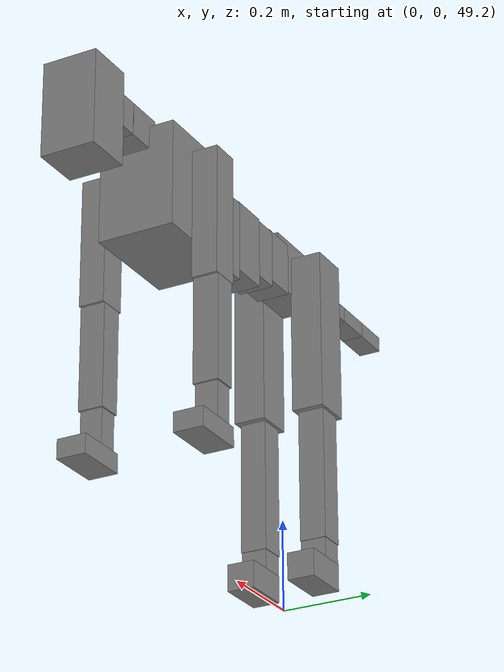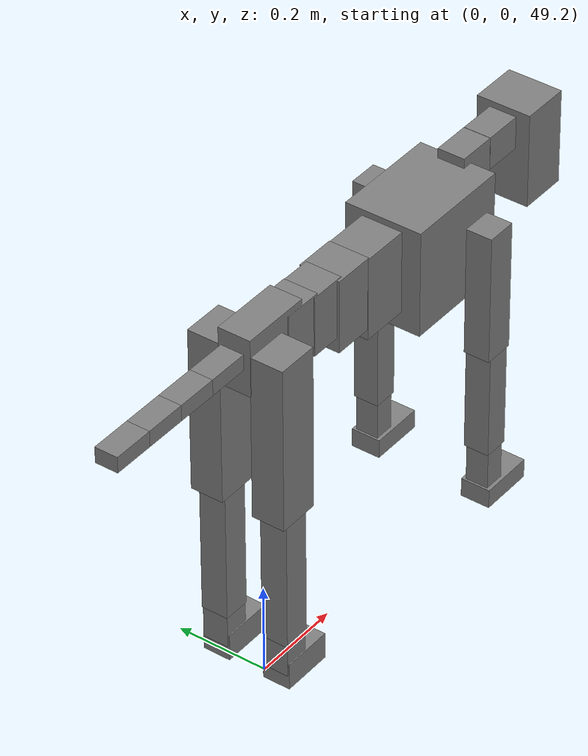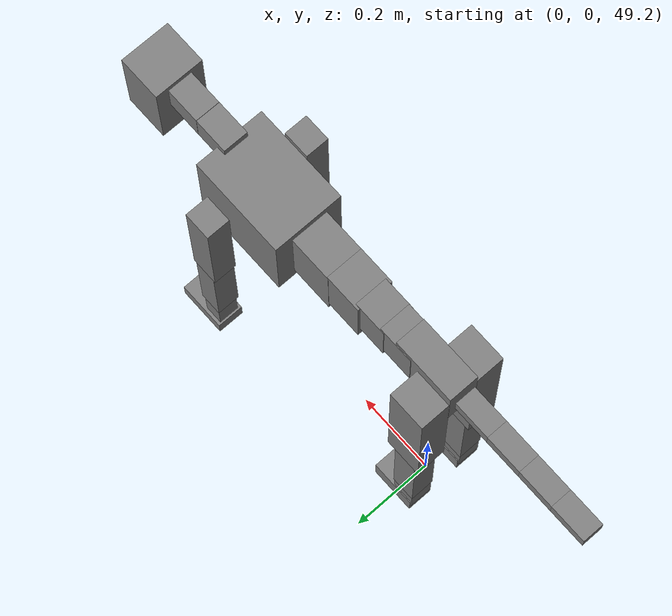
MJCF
<mujoco model="dog">

    <default>
        <joint armature="0.02" stiffness="1" damping="0.2" limited="true"/>
        <geom condim="3" friction="1 0.05 0.05" margin="0.01"/>
        <motor ctrllimited="true" ctrlrange="-1.0 1.0" forcelimited="true" gear="50"/>
    </default>

    <compiler inertiafromgeom="true" angle="radian"/>

    <option timestep="0.016" iterations="50" tolerance="1e-10" solver="Newton" jacobian="dense" cone="pyramidal"/>

    <size nconmax="20000" njmax="60000" nstack="5000000"/>
    <visual>
        <map force="0.1" zfar="30"/>
        <rgba haze="0.15 0.25 0.35 1"/>
        <quality shadowsize="2048"/>
        <global offwidth="800" offheight="800"/>
    </visual>

    <asset>
        <texture type="skybox" builtin="gradient" rgb1="0.3 0.5 0.7" rgb2="0 0 0" width="512" height="512"/>
        <texture name="texplane" type="2d" builtin="checker" rgb1=".2 .3 .4" rgb2=".1 0.15 0.2" width="512" height="512"
                 mark="cross" markrgb=".8 .8 .8"/>
        <texture name="texgeom" type="cube" builtin="flat" mark="cross" width="127" height="1278" rgb1="0.8 0.6 0.4"
                 rgb2="0.8 0.6 0.4" markrgb="1 1 1" random="0.01"/>

        <material name="matplane" reflectance="0.3" texture="texplane" texrepeat="1 1" texuniform="true"/>
        <material name="matgeom" texture="texgeom" texuniform="true" rgba="0.8 0.6 .4 1"/>
    </asset>

    <worldbody>
        <geom name="floor" pos="0 0 0" size="0 0 .25" type="plane" material="matplane" condim="3"/>

        <light directional="false" diffuse=".2 .2 .2" specular="0 0 0" pos="0 0 5" dir="0 0 -1" castshadow="false"/>
        <light mode="targetbodycom" target="torso" directional="false" diffuse=".8 .8 .8" specular="0.3 0.3 0.3"
               pos="0 0 4.0" dir="0 0 -1"/>

        <body name="root" pos="0 0 50">
            <freejoint name="root_1"/>
            <geom type="box" pos="0 0 -0.02" size="0.0774  0.0358  0.063" density="2030"/>

            <body name="spine1" pos="0.054 0 0">
                <joint name="spine1_y" axis="0 1 0" range="0 0.7" limited="true"/>
                <geom type="box" pos="0.02375 0 -0.03" size="0.04375  0.0375  0.05985" density="2030"/>

                <body name="spine2" pos="0.0612 0 0">
                    <joint name="spine2_y" axis="0 1 0" range="-0.15 0.15" limited="true"/>
                    <geom type="box" pos="0.03555  0  -0.04" size="0.04055  0.039  0.06615" density="2030"/>

                    <body name="spine3" pos="0.0730 0 0">
                        <joint name="spine3_y" axis="0 1 0" range="-0.15 0.15" limited="true"/>
                        <geom type="box" pos="0.03555  0  -0.057" size="0.04555  0.0445  0.081" density="2030"/>

                        <body name="spine4" pos="0.0780 0 0">
                            <joint name="spine4_y" axis="0 1 0" range="-0.15 0.15" limited="true"/>
                            <geom type="box" pos="0.05265  0  -0.07" size="0.05265  0.045  0.09135" density="2030"/>

                            <body name="torso" pos="0.1082 0 0">
                                <joint name="torso_y" axis="0 1 0" range="-0.15 0.15" limited="true"/>
                                <geom type="box" pos="0.11925  0  -0.085" size="0.11925  0.085  0.11745"
                                      density="2030"/>

                                <body name="neck1" pos="0.2160  0   0.0180">
                                    <joint name="neck1_y" axis="0 1 0" range="-1.2  -1" limited="true"/>
                                    <geom type="box" pos="0.0423  0  0" size="0.0423  0.03  0.036" density="2325"/>

                                    <body name="neck2" pos="0.0853  0  0">
                                        <joint name="neck2_y" axis="0 1 0" range="0.1  0" limited="true"/>
                                        <geom type="box" pos="0.0423  0  0" size="0.0423  0.03  0.036" density="2325"/>

                                        <body name="head" pos="0.0853  0  0">
                                            <joint name="head_y" axis="0 1 0" range="-0.3  -0.2" limited="true"/>
                                            <geom type="box" pos="0.0531  0  -0.055" size="0.0531  0.06  0.1044"
                                                  density="4030"/>

                                        </body>
                                    </body>
                                </body>

                                <body name="front_shoulder" pos="0.156  0   -0.0480">
                                    <joint name="front_shoulder_y" axis="0 1 0" range="-1 1.5" limited="true"/>
                                    <geom type="box" pos="0 0.13 -0.1158" size="0.0332  0.0284  0.1424" density="1158"/>
                                    <geom type="box" pos="0 -0.13 -0.1158" size="0.0332  0.0284  0.1424"
                                          density="1158"/>

                                    <body name="front_elbow" pos="0  0  -0.2316">
                                        <joint name="front_elbow_y" axis="0 1 0" range="-2 0" limited="true"/>
                                        <geom type="box" pos="0 0.13 -0.1274" size="0.0272  0.0278  0.1274"
                                              density="1081"/>
                                        <geom type="box" pos="0 -0.13 -0.1274" size="0.0272  0.0278  0.1274"
                                              density="1081"/>

                                        <body name="front_wrist" pos="0  0  -0.2548">
                                            <joint name="front_wrist_y" axis="0 1 0" range="-0.2 0" limited="true"/>
                                            <geom type="box" pos="0 0.13 -0.0493" size="0.0225  0.0250  0.0625"
                                                  density="1664"/>
                                            <geom type="box" pos="0 -0.13 -0.0493" size="0.0225  0.0250  0.0625"
                                                  density="1664"/>

                                            <body name="front_finger_end" pos="0  0  -0.0987">
                                                <joint name="front_finger_y" axis="0 1 0" range="-0.4 1"
                                                       limited="true"/>
                                                <geom type="box" pos="0.0325  0.13  -0.0061"
                                                      size="0.0595  0.0325  0.0211" density="1515"/>
                                                <geom type="box" pos="0.0325  -0.13  -0.0061"
                                                      size="0.0595  0.0325  0.0211" density="1515"/>

                                            </body>

                                        </body>
                                    </body>
                                </body>

                            </body>
                        </body>
                    </body>
                </body>
            </body>

            <body name="back_hip" pos="-0.03 0 -0.018">
                <joint name="back_hip_y" axis="0 1 0" range="-1.5 0.3" limited="true"/>
                <geom type="box" pos="0 0.07 -0.1595" size="0.0458  0.0359  0.1823" density="1154"/>
                <geom type="box" pos="0 -0.07 -0.1595" size="0.0458  0.0359  0.1823" density="1154"/>

                <body name="back_knee" pos="0  0  -0.3190">
                    <joint name="back_knee_y" axis="0 1 0" range="0 2.8" limited="true"/>
                    <geom type="box" pos="0 0.07 -0.1504" size="0.0299  0.0295  0.1659" density="1227"/>
                    <geom type="box" pos="0 -0.07 -0.1504" size="0.0299  0.0295  0.1659" density="1227"/>

                    <body name="back_ankle" pos="0  0  -0.3007">
                        <joint name="back_ankle_y" axis="0 1 0" range="-2.2 0" limited="true"/>
                        <geom type="box" pos="0 0.07 -0.0379" size="0.0282  0.0282  0.0491" density="1284"/>
                        <geom type="box" pos="0 -0.07 -0.0379" size="0.0282  0.0282  0.0491" density="1284"/>

                        <body name="back_toe_end" pos="0  0  -0.0757">
                            <joint name="back_toe_y" axis="0 1 0" range="-0.4 1" limited="true"/>
                            <geom type="box" pos="0.0305  0.07  -0.0148" size="0.0560  0.0305  0.0298" density="1515"/>
                            <geom type="box" pos="0.0305  -0.07  -0.0148" size="0.0560  0.0305  0.0298" density="1515"/>

                        </body>
                    </body>
                </body>
            </body>

            <body name="tail1" pos="-0.074 0 -0.006">
                <joint name="tail1_y" axis="0 1 0" range="-0.2 0.2" limited="true"/>
                <geom type="box" pos="-0.0536  0  0" size="0.045  0.025  0.0175" density="1587"/>

                <body name="tail2" pos="-0.09 0 0">
                    <joint name="tail2_y" axis="0 1 0" range="-0.2 0.2" limited="true"/>
                    <geom type="box" pos="-0.0536  0  0" size="0.045  0.025  0.0175" density="1587"/>

                    <body name="tail3" pos="-0.09 0 0">
                        <joint name="tail3_y" axis="0 1 0" range="-0.2 0.2" limited="true"/>
                        <geom type="box" pos="-0.0536  0  0" size="0.045  0.025  0.0175" density="1587"/>

                        <body name="tail4" pos="-0.09 0 0">
                            <joint name="tail4_y" axis="0 1 0" range="-0.2 0.2" limited="true"/>
                            <geom type="box" pos="-0.0536  0  0" size="0.045  0.025  0.0175" density="1587"/>

                        </body>
                    </body>
                </body>
            </body>
        </body>
    </worldbody>

    <actuator>
        <motor joint="spine1_y" forcerange="-150 150     "/>
        <motor joint="spine2_y" forcerange="-150 150     "/>
        <motor joint="spine3_y" forcerange="-150 150     "/>
        <motor joint="spine4_y" forcerange="-150 150     "/>
        <motor joint="torso_y" forcerange="-150 150     "/>
        <motor joint="neck1_y" forcerange="-100 100       "/>
        <motor joint="neck2_y" forcerange="-100 100       "/>
        <motor joint="head_y" forcerange="-150 150       "/>
        <motor joint="front_shoulder_y" forcerange="-176.22 112.97"/>
        <motor joint="front_elbow_y" forcerange="-105.42 197.05"/>
        <motor joint="front_wrist_y" forcerange="-104.71 95.44"/>
        <motor joint="front_finger_y" forcerange="-62.78 70.32"/>
        <motor joint="back_hip_y" forcerange="-377.94 301.00"/>
        <motor joint="back_knee_y" forcerange="-262.43 366.33"/>
        <motor joint="back_angle_y" forcerange="-209.79 140.70"/>
        <motor joint="back_toe_y" forcerange="-113.64 50.56"/>
        <motor joint="tail1_y" forcerange="-50 50     "/>
        <motor joint="tail2_y" forcerange="-50 50     "/>
        <motor joint="tail3_y" forcerange="-50 50     "/>
        <motor joint="tail4_y" forcerange="-50 50     "/>
    </actuator>
</mujoco>
